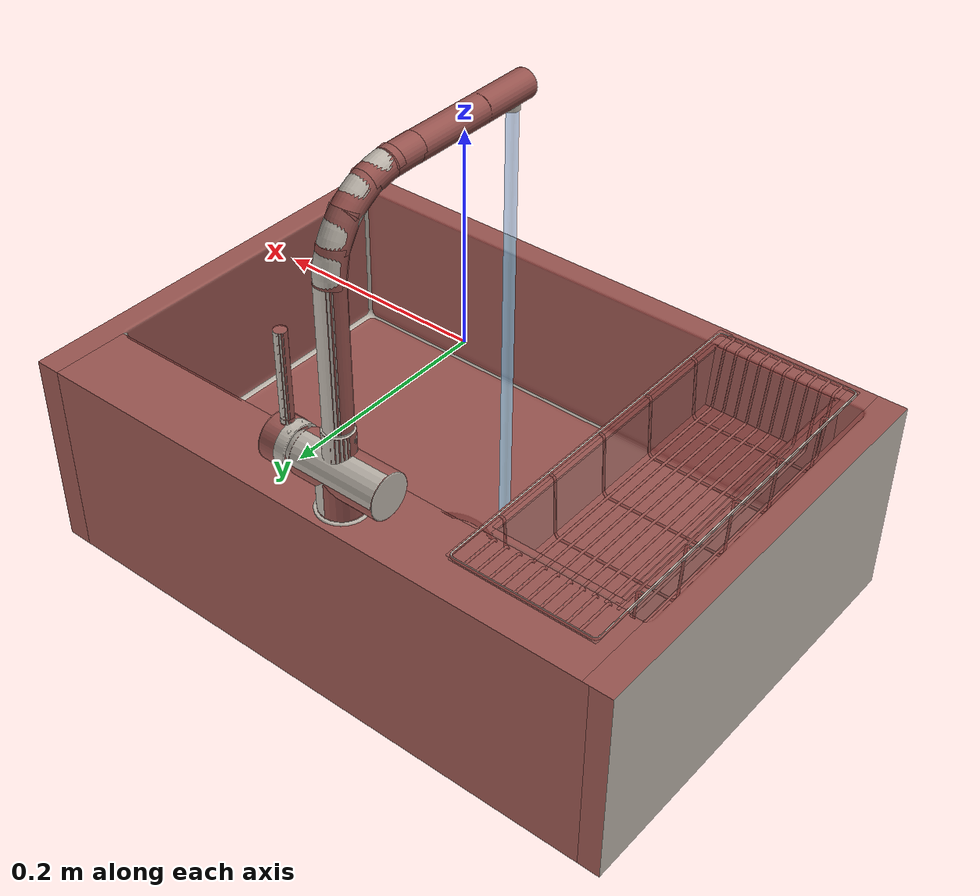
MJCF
<?xml version='1.0' encoding='UTF-8'?>
<mujoco model="model">
  <option timestep="0.002" gravity="0.0 0.0 -9.81"/>
  <compiler angle="radian"/>
  <asset>
    <mesh file="visuals/handle.obj" name="handle_vis"/>
    <mesh file="visuals/Body001.obj" name="Body001_vis"/>
    <mesh file="visuals/Shelf001.obj" name="Shelf001_vis"/>
    <mesh file="visuals/spout.obj" name="spout_vis"/>
    <texture file="visuals/T_BC001.png" name="Body001_material" type="2d"/>
    <material name="Body001_material" rgba="1 1 1 1.0" texture="Body001_material" shininess="0.1" specular="0.9"/>
    <texture file="visuals/T_BC001.png" name="handle_material" type="2d"/>
    <material name="handle_material" rgba="1 1 1 1.0" texture="handle_material" shininess="0.1" specular="0.9"/>
    <texture file="visuals/T_BC001.png" name="Shelf001_material" type="2d"/>
    <material name="Shelf001_material" rgba="1 1 1 1.0" texture="Shelf001_material" shininess="0.1" specular="0.9"/>
    <texture file="visuals/T_BC001.png" name="spout_material" type="2d"/>
    <material name="spout_material" rgba="1 1 1 1.0" texture="spout_material" shininess="0.1" specular="0.9"/>
  </asset>
  <default>
    <default class="visual">
      <geom conaffinity="0" contype="0" group="1" type="mesh"/>
    </default>
    <default class="collision">
      <geom group="0" rgba="0.5 0 0 0.5" solimp="0.998 0.998 0.001" solref="0.001 2"/>
    </default>
    <default class="spawn">
      <geom group="0" rgba="1 1 1 0.5" contype="0" conaffinity="0"/>
      <site group="0" rgba="1 1 1 0.5"/>
    </default>
    <default class="region">
      <geom group="1" conaffinity="0" contype="0" rgba="0 1 0 0"/>
    </default>
  </default>
  <worldbody>
    <body>
      <body name="object">
        <geom mesh="Body001_vis" type="mesh" solimp="0.998 0.998 0.001" solref="0.001 1" friction="0.95 0.3 0.1" class="visual" material="Body001_material"/>
        <geom class="collision" type="box" pos="-0.29573947191238403 1.30385160446167e-08 -0.1457519680261612" size="0.013795404694974422 0.21250402927398682 0.10053214430809021" quat="1.0 0.0 0.0 0.0"/>
        <geom class="collision" type="box" pos="0.0006880920846015215 -0.19935894012451172 -0.1457519233226776" size="0.29166504740715027 0.01314515434205532 0.10053209215402603" quat="1.0 0.0 0.0 0.0"/>
        <geom class="collision" type="box" pos="0.0003312316257506609 0.1745346039533615 -0.145751953125" size="0.2884378731250763 0.03796948865056038 0.10053209215402603" quat="1.0 0.0 0.0 0.0"/>
        <geom class="collision" type="box" pos="0.29696571826934814 5.587935447692871e-09 -0.1457519233226776" size="0.012569138780236244 0.2125040888786316 0.10053212195634842" quat="1.0 0.0 0.0 0.0"/>
        <geom class="collision" type="cylinder" pos="-0.026681607589125633 0.18301281332969666 -0.027524076402187347" size="0.020769257098436356 0.018180131912231445" quat="1.0 0.0 0.0 0.0"/>
        <geom class="collision" type="cylinder" pos="-0.026623418554663658 0.1829071342945099 0.02004004642367363" size="0.0139413271099329 0.013050315901637077" quat="1.0 0.0 0.0 0.0"/>
        <geom class="collision" type="cylinder" pos="-0.03357614576816559 0.18287891149520874 -0.00751347653567791" size="0.02091388590633869 0.04293079674243927" quat="0.7071068286895752 -0.0 0.7071067690849304 0.0"/>
        <geom class="collision" type="box" pos="-0.01075032353401184 -0.023271121084690094 -0.22231754660606384" size="0.2943456470966339 0.1747555136680603 0.023966528475284576" quat="1.0 0.0 0.0 0.0"/>
        <body name="handle">
          <joint axis="1.0 0.0 0.0" pos="0.023546822369098663 0.1831321120262146 -0.007625986821949482" limited="true" name="handle_temp_joint" type="hinge" range="-0.7853981633974483 0.7853981633974483" damping="0.5" frictionloss="1" armature="2"/>
          <joint axis="0.0 1.0 0.0" pos="0.023546822369098663 0.1831321120262146 -0.007625986821949482" limited="true" name="handle_joint" type="hinge" range="0 0.5" damping="0.5" frictionloss="1" armature="2"/>
          <geom mesh="handle_vis" type="mesh" solimp="0.998 0.998 0.001" solref="0.001 1" friction="0.95 0.3 0.1" class="visual" material="handle_material"/>
          <geom name="handle_main" class="collision" type="cylinder" pos="0.02859884686768055 0.1829071193933487 0.05701674520969391" size="0.005644665565341711 0.043615445494651794" quat="1.0 0.0 0.0 0.0"/>
          <geom class="collision" type="cylinder" pos="0.033786993473768234 0.18287891149520874 -0.007513475604355335" size="0.021571222692728043 0.008113272488117218" quat="0.7071068286895752 -0.0 0.7071067690849304 0.0"/>
        </body>
        <body name="Shelf001">
          <joint axis="0.0 0.0 1.0" pos="-0.19791516661643982 -0.013705432415008545 -0.07553832232952118" limited="true" name="Shelf001_joint" range="0.0 0.1" type="slide" damping="1" frictionloss="1" armature=".01" stiffness="0.05"/>
          <geom mesh="Shelf001_vis" type="mesh" solimp="0.998 0.998 0.001" solref="0.001 1" friction="0.95 0.3 0.1" class="visual" material="Shelf001_material"/>
          <geom class="collision" type="box" pos="-0.13628754019737244 -0.02725769579410553 -0.07506629824638367" size="0.002058111596852541 0.15637513995170593 0.03274409845471382" quat="1.0 0.0 0.0 0.0"/>
          <geom class="collision" type="box" pos="-0.2589564323425293 -0.02725769579410553 -0.07506629824638367" size="0.0020581125281751156 0.15637564659118652 0.032744161784648895" quat="1.0 0.0 0.0 0.0"/>
          <geom class="collision" type="box" pos="-0.19831039011478424 -0.17819945514202118 -0.07506629824638367" size="0.0606623999774456 0.0025869891978800297 0.03274451568722725" quat="0.9984028935432434 0.05649510398507118 -2.965359116196859e-17 1.6343655813636579e-18"/>
          <geom class="collision" type="box" pos="-0.19831039011478424 0.12992987036705017 -0.07490633428096771" size="0.0606623999774456 0.002586992923170328 0.032744549214839935" quat="0.9993682503700256 -0.035540804266929626 2.114895850942301e-17 8.692025250440637e-19"/>
          <geom class="collision" type="box" pos="-0.19831039011478424 -0.02492409572005272 -0.10233265161514282" size="0.0606623999774456 0.1557116061449051 0.0010605186689645052" quat="1.0 0.0 0.0 0.0"/>
          <geom class="collision" type="box" pos="-0.19831039011478424 -0.19205521047115326 -0.04366682842373848" size="0.0606623999774456 0.012024065479636192 0.0010932263685390353" quat="1.0 0.0 0.0 0.0"/>
          <geom class="collision" type="box" pos="-0.19957883656024933 0.15746037662029266 -0.043339651077985764" size="0.06940069794654846 0.020449461415410042 0.0006955183343961835" quat="1.0 0.0 0.0 0.0"/>
          <geom class="collision" type="box" pos="-0.132585346698761 -0.015231795608997345 -0.04340459033846855" size="0.006222839001566172 0.19085927307605743 0.0006955178105272353" quat="1.0 0.0 0.0 0.0"/>
          <geom class="collision" type="box" pos="-0.26206278800964355 -0.01596555858850479 -0.04340459406375885" size="0.006222768686711788 0.18801914155483246 0.0006955089047551155" quat="1.0 0.0 0.0 0.0"/>
        </body>
        <body name="spout">
          <joint axis="0.0 0.0 1.0" pos="-0.026585448533296585 0.1829613447189331 0.1483708620071411" limited="true" name="spout_joint" range="-1.0471975511965976 1.0471975511965976" type="hinge" damping="10"/>
          <site type="cylinder" rgba="0.5 0.75 1 0.5" size="0.005293175112456083 0.22727230191230774" pos="-0.02662898600101471 -0.0244566909968853 -0.0075023360550403595" name="water"/>
          <geom mesh="spout_vis" type="mesh" solimp="0.998 0.998 0.001" solref="0.001 1" friction="0.95 0.3 0.1" class="visual" material="spout_material"/>
          <geom class="collision" type="cylinder" pos="-0.026662632822990417 0.026742637157440186 0.23387353122234344" size="0.012544616125524044 0.06533466279506683" quat="0.7071067094802856 0.70710688829422 0.0 0.0" name="spout_main"/>
          <geom class="collision" type="cylinder" pos="-0.026662632822990417 0.1827104389667511 0.10122103244066238" size="0.012544616125524044 0.06533466279506683" quat="1.0 1.1920928955078125e-07 0.0 0.0"/>
          <geom class="collision" type="cylinder" pos="-0.026662632822990417 0.1802602857351303 0.17960378527641296" size="0.01254461519420147 0.015865996479988098" quat="0.9955674409866333 0.0940505638718605 2.5421713641451373e-17 -5.4599003453363965e-18"/>
          <geom class="collision" type="cylinder" pos="-0.026662632822990417 0.17033305764198303 0.20380142331123352" size="0.01254461519420147 0.015865996479988098" quat="0.9648149013519287 0.2629300355911255 -1.1825506385956092e-17 2.539792930370833e-18"/>
          <geom class="collision" type="cylinder" pos="-0.026662632822990417 0.15283629298210144 0.22142226994037628" size="0.01254461519420147 0.015865996479988098" quat="0.8722114562988281 0.4891289472579956 -6.405854746711117e-17 1.3758040179257605e-17"/>
          <geom class="collision" type="cylinder" pos="-0.026662632822990417 0.12777002155780792 0.23196996748447418" size="0.01254461519420147 0.015865996479988098" quat="0.772973895072937 0.6344377994537354 -9.942481337549348e-17 2.135374857675644e-17"/>
          <geom class="collision" type="cylinder" pos="-0.026662632822990417 0.10530964285135269 0.23395541310310364" size="0.01254461519420147 0.015865996479988098" quat="0.714352548122406 0.6997860074043274 -1.1596757197616188e-16 2.4906684522296256e-17"/>
        </body>
        <geom class="region" name="reg_basin" type="box" pos="0.07886886596679688 -0.025168873369693756 -0.1217707023024559" size="0.20058770275115967 0.15644139593839645 0.07245168632268906"/>
        <geom class="region" name="reg_main" type="box" pos="0.0 0.0 -0.145751953125" size="0.31053478813171387 0.21350402927398682 0.10153208470344544"/>
      </body>
    </body>
  </worldbody>
  <actuator>
    <motor name="handle_joint_actuator" joint="handle_joint" gear="10"/>
    <motor name="handle_temp_joint_actuator" joint="handle_temp_joint" gear="10"/>
    <motor name="Shelf001_joint_actuator" joint="Shelf001_joint" gear="10"/>
    <motor name="spout_joint_actuator" joint="spout_joint" gear="10"/>
  </actuator>
</mujoco>
